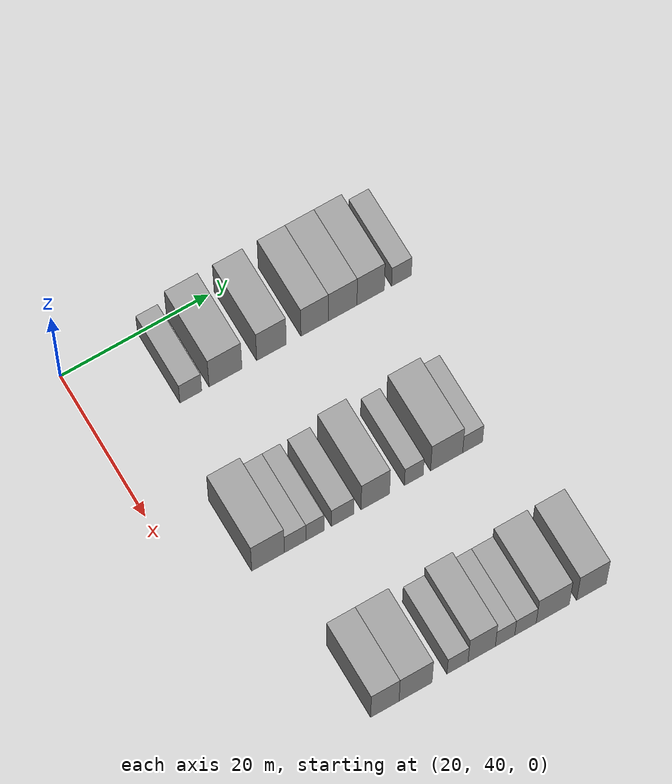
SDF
<sdf version="1.6">
 <world name="default">
  <model name="building_80">
   <static>1</static>
   <pose>25.0000 51.8571 0 0.000000 0.000000 0.000000</pose>
   <link name="link">
    <pose>0 0 3.00 0 0 0</pose>
    <collision name="collision"><geometry><box><size>10.0000 2.9275 6.0000</size></box></geometry></collision>
    <visual name="visual">
     <cast_shadows>0</cast_shadows>
     <geometry><box><size>10.0000 2.9275 6.0000</size></box></geometry>
     <material>
      <script>
       <uri>model://grey_wall/materials/scripts</uri>
       <uri>model://grey_wall/materials/textures</uri>
       <name>vrc/grey_wall</name>
      </script>
     </material>
    </visual>
   </link>
  </model>
  <model name="building_81">
   <static>1</static>
   <pose>25.0000 56.5417 0 0.000000 0.000000 0.000000</pose>
   <link name="link">
    <pose>0 0 4.50 0 0 0</pose>
    <collision name="collision"><geometry><box><size>10.0000 4.4417 9.0000</size></box></geometry></collision>
    <visual name="visual">
     <cast_shadows>0</cast_shadows>
     <geometry><box><size>10.0000 4.4417 9.0000</size></box></geometry>
     <material>
      <script>
       <uri>model://grey_wall/materials/scripts</uri>
       <uri>model://grey_wall/materials/textures</uri>
       <name>vrc/grey_wall</name>
      </script>
     </material>
    </visual>
   </link>
  </model>
  <model name="building_82">
   <static>1</static>
   <pose>25.0000 62.7658 0 0.000000 0.000000 0.000000</pose>
   <link name="link">
    <pose>0 0 4.50 0 0 0</pose>
    <collision name="collision"><geometry><box><size>10.0000 4.0066 9.0000</size></box></geometry></collision>
    <visual name="visual">
     <cast_shadows>0</cast_shadows>
     <geometry><box><size>10.0000 4.0066 9.0000</size></box></geometry>
     <material>
      <script>
       <uri>model://grey_wall/materials/scripts</uri>
       <uri>model://grey_wall/materials/textures</uri>
       <name>vrc/grey_wall</name>
      </script>
     </material>
    </visual>
   </link>
  </model>
  <model name="building_83">
   <static>1</static>
   <pose>25.0000 68.6392 0 0.000000 0.000000 0.000000</pose>
   <link name="link">
    <pose>0 0 4.50 0 0 0</pose>
    <collision name="collision"><geometry><box><size>10.0000 3.7401 9.0000</size></box></geometry></collision>
    <visual name="visual">
     <cast_shadows>0</cast_shadows>
     <geometry><box><size>10.0000 3.7401 9.0000</size></box></geometry>
     <material>
      <script>
       <uri>model://grey_wall/materials/scripts</uri>
       <uri>model://grey_wall/materials/textures</uri>
       <name>vrc/grey_wall</name>
      </script>
     </material>
    </visual>
   </link>
  </model>
  <model name="building_84">
   <static>1</static>
   <pose>25.0000 72.4593 0 0.000000 0.000000 0.000000</pose>
   <link name="link">
    <pose>0 0 4.50 0 0 0</pose>
    <collision name="collision"><geometry><box><size>10.0000 3.9002 9.0000</size></box></geometry></collision>
    <visual name="visual">
     <cast_shadows>0</cast_shadows>
     <geometry><box><size>10.0000 3.9002 9.0000</size></box></geometry>
     <material>
      <script>
       <uri>model://grey_wall/materials/scripts</uri>
       <uri>model://grey_wall/materials/textures</uri>
       <name>vrc/grey_wall</name>
      </script>
     </material>
    </visual>
   </link>
  </model>
  <model name="building_85">
   <static>1</static>
   <pose>25.0000 76.2775 0 0.000000 0.000000 0.000000</pose>
   <link name="link">
    <pose>0 0 4.50 0 0 0</pose>
    <collision name="collision"><geometry><box><size>10.0000 3.7361 9.0000</size></box></geometry></collision>
    <visual name="visual">
     <cast_shadows>0</cast_shadows>
     <geometry><box><size>10.0000 3.7361 9.0000</size></box></geometry>
     <material>
      <script>
       <uri>model://grey_wall/materials/scripts</uri>
       <uri>model://grey_wall/materials/textures</uri>
       <name>vrc/grey_wall</name>
      </script>
     </material>
    </visual>
   </link>
  </model>
  <model name="building_86">
   <static>1</static>
   <pose>25.0000 80.4934 0 0.000000 0.000000 0.000000</pose>
   <link name="link">
    <pose>0 0 3.00 0 0 0</pose>
    <collision name="collision"><geometry><box><size>10.0000 2.6956 6.0000</size></box></geometry></collision>
    <visual name="visual">
     <cast_shadows>0</cast_shadows>
     <geometry><box><size>10.0000 2.6956 6.0000</size></box></geometry>
     <material>
      <script>
       <uri>model://grey_wall/materials/scripts</uri>
       <uri>model://grey_wall/materials/textures</uri>
       <name>vrc/grey_wall</name>
      </script>
     </material>
    </visual>
   </link>
  </model>
  <model name="building_200">
   <static>1</static>
   <pose>47.0000 49.5239 0 0.000000 0.000000 0.000000</pose>
   <link name="link">
    <pose>0 0 4.50 0 0 0</pose>
    <collision name="collision"><geometry><box><size>10.0000 4.3747 9.0000</size></box></geometry></collision>
    <visual name="visual">
     <cast_shadows>0</cast_shadows>
     <geometry><box><size>10.0000 4.3747 9.0000</size></box></geometry>
     <material>
      <script>
       <uri>model://grey_wall/materials/scripts</uri>
       <uri>model://grey_wall/materials/textures</uri>
       <name>vrc/grey_wall</name>
      </script>
     </material>
    </visual>
   </link>
  </model>
  <model name="building_201">
   <static>1</static>
   <pose>47.0000 53.1585 0 0.000000 0.000000 0.000000</pose>
   <link name="link">
    <pose>0 0 3.00 0 0 0</pose>
    <collision name="collision"><geometry><box><size>10.0000 2.8946 6.0000</size></box></geometry></collision>
    <visual name="visual">
     <cast_shadows>0</cast_shadows>
     <geometry><box><size>10.0000 2.8946 6.0000</size></box></geometry>
     <material>
      <script>
       <uri>model://grey_wall/materials/scripts</uri>
       <uri>model://grey_wall/materials/textures</uri>
       <name>vrc/grey_wall</name>
      </script>
     </material>
    </visual>
   </link>
  </model>
  <model name="building_202">
   <static>1</static>
   <pose>47.0000 55.8089 0 0.000000 0.000000 0.000000</pose>
   <link name="link">
    <pose>0 0 3.00 0 0 0</pose>
    <collision name="collision"><geometry><box><size>10.0000 2.4060 6.0000</size></box></geometry></collision>
    <visual name="visual">
     <cast_shadows>0</cast_shadows>
     <geometry><box><size>10.0000 2.4060 6.0000</size></box></geometry>
     <material>
      <script>
       <uri>model://grey_wall/materials/scripts</uri>
       <uri>model://grey_wall/materials/textures</uri>
       <name>vrc/grey_wall</name>
      </script>
     </material>
    </visual>
   </link>
  </model>
  <model name="building_203">
   <static>1</static>
   <pose>47.0000 59.5060 0 0.000000 0.000000 0.000000</pose>
   <link name="link">
    <pose>0 0 3.00 0 0 0</pose>
    <collision name="collision"><geometry><box><size>10.0000 2.9882 6.0000</size></box></geometry></collision>
    <visual name="visual">
     <cast_shadows>0</cast_shadows>
     <geometry><box><size>10.0000 2.9882 6.0000</size></box></geometry>
     <material>
      <script>
       <uri>model://grey_wall/materials/scripts</uri>
       <uri>model://grey_wall/materials/textures</uri>
       <name>vrc/grey_wall</name>
      </script>
     </material>
    </visual>
   </link>
  </model>
  <model name="building_204">
   <static>1</static>
   <pose>47.0000 63.9199 0 0.000000 0.000000 0.000000</pose>
   <link name="link">
    <pose>0 0 4.50 0 0 0</pose>
    <collision name="collision"><geometry><box><size>10.0000 3.8397 9.0000</size></box></geometry></collision>
    <visual name="visual">
     <cast_shadows>0</cast_shadows>
     <geometry><box><size>10.0000 3.8397 9.0000</size></box></geometry>
     <material>
      <script>
       <uri>model://grey_wall/materials/scripts</uri>
       <uri>model://grey_wall/materials/textures</uri>
       <name>vrc/grey_wall</name>
      </script>
     </material>
    </visual>
   </link>
  </model>
  <model name="building_205">
   <static>1</static>
   <pose>47.0000 69.1114 0 0.000000 0.000000 0.000000</pose>
   <link name="link">
    <pose>0 0 3.00 0 0 0</pose>
    <collision name="collision"><geometry><box><size>10.0000 2.5434 6.0000</size></box></geometry></collision>
    <visual name="visual">
     <cast_shadows>0</cast_shadows>
     <geometry><box><size>10.0000 2.5434 6.0000</size></box></geometry>
     <material>
      <script>
       <uri>model://grey_wall/materials/scripts</uri>
       <uri>model://grey_wall/materials/textures</uri>
       <name>vrc/grey_wall</name>
      </script>
     </material>
    </visual>
   </link>
  </model>
  <model name="building_206">
   <static>1</static>
   <pose>47.0000 73.5597 0 0.000000 0.000000 0.000000</pose>
   <link name="link">
    <pose>0 0 4.50 0 0 0</pose>
    <collision name="collision"><geometry><box><size>10.0000 4.3532 9.0000</size></box></geometry></collision>
    <visual name="visual">
     <cast_shadows>0</cast_shadows>
     <geometry><box><size>10.0000 4.3532 9.0000</size></box></geometry>
     <material>
      <script>
       <uri>model://grey_wall/materials/scripts</uri>
       <uri>model://grey_wall/materials/textures</uri>
       <name>vrc/grey_wall</name>
      </script>
     </material>
    </visual>
   </link>
  </model>
  <model name="building_207">
   <static>1</static>
   <pose>47.0000 77.0814 0 0.000000 0.000000 0.000000</pose>
   <link name="link">
    <pose>0 0 3.00 0 0 0</pose>
    <collision name="collision"><geometry><box><size>10.0000 2.6901 6.0000</size></box></geometry></collision>
    <visual name="visual">
     <cast_shadows>0</cast_shadows>
     <geometry><box><size>10.0000 2.6901 6.0000</size></box></geometry>
     <material>
      <script>
       <uri>model://grey_wall/materials/scripts</uri>
       <uri>model://grey_wall/materials/textures</uri>
       <name>vrc/grey_wall</name>
      </script>
     </material>
    </visual>
   </link>
  </model>
  <model name="building_320">
   <static>1</static>
   <pose>69.0000 52.1998 0 0.000000 0.000000 0.000000</pose>
   <link name="link">
    <pose>0 0 4.50 0 0 0</pose>
    <collision name="collision"><geometry><box><size>10.0000 3.7771 9.0000</size></box></geometry></collision>
    <visual name="visual">
     <cast_shadows>0</cast_shadows>
     <geometry><box><size>10.0000 3.7771 9.0000</size></box></geometry>
     <material>
      <script>
       <uri>model://grey_wall/materials/scripts</uri>
       <uri>model://grey_wall/materials/textures</uri>
       <name>vrc/grey_wall</name>
      </script>
     </material>
    </visual>
   </link>
  </model>
  <model name="building_321">
   <static>1</static>
   <pose>69.0000 56.2789 0 0.000000 0.000000 0.000000</pose>
   <link name="link">
    <pose>0 0 4.50 0 0 0</pose>
    <collision name="collision"><geometry><box><size>10.0000 4.3811 9.0000</size></box></geometry></collision>
    <visual name="visual">
     <cast_shadows>0</cast_shadows>
     <geometry><box><size>10.0000 4.3811 9.0000</size></box></geometry>
     <material>
      <script>
       <uri>model://grey_wall/materials/scripts</uri>
       <uri>model://grey_wall/materials/textures</uri>
       <name>vrc/grey_wall</name>
      </script>
     </material>
    </visual>
   </link>
  </model>
  <model name="building_322">
   <static>1</static>
   <pose>69.0000 61.8760 0 0.000000 0.000000 0.000000</pose>
   <link name="link">
    <pose>0 0 3.00 0 0 0</pose>
    <collision name="collision"><geometry><box><size>10.0000 2.8130 6.0000</size></box></geometry></collision>
    <visual name="visual">
     <cast_shadows>0</cast_shadows>
     <geometry><box><size>10.0000 2.8130 6.0000</size></box></geometry>
     <material>
      <script>
       <uri>model://grey_wall/materials/scripts</uri>
       <uri>model://grey_wall/materials/textures</uri>
       <name>vrc/grey_wall</name>
      </script>
     </material>
    </visual>
   </link>
  </model>
  <model name="building_323">
   <static>1</static>
   <pose>69.0000 65.1072 0 0.000000 0.000000 0.000000</pose>
   <link name="link">
    <pose>0 0 4.50 0 0 0</pose>
    <collision name="collision"><geometry><box><size>10.0000 3.6495 9.0000</size></box></geometry></collision>
    <visual name="visual">
     <cast_shadows>0</cast_shadows>
     <geometry><box><size>10.0000 3.6495 9.0000</size></box></geometry>
     <material>
      <script>
       <uri>model://grey_wall/materials/scripts</uri>
       <uri>model://grey_wall/materials/textures</uri>
       <name>vrc/grey_wall</name>
      </script>
     </material>
    </visual>
   </link>
  </model>
  <model name="building_324">
   <static>1</static>
   <pose>69.0000 68.2366 0 0.000000 0.000000 0.000000</pose>
   <link name="link">
    <pose>0 0 3.00 0 0 0</pose>
    <collision name="collision"><geometry><box><size>10.0000 2.6093 6.0000</size></box></geometry></collision>
    <visual name="visual">
     <cast_shadows>0</cast_shadows>
     <geometry><box><size>10.0000 2.6093 6.0000</size></box></geometry>
     <material>
      <script>
       <uri>model://grey_wall/materials/scripts</uri>
       <uri>model://grey_wall/materials/textures</uri>
       <name>vrc/grey_wall</name>
      </script>
     </material>
    </visual>
   </link>
  </model>
  <model name="building_325">
   <static>1</static>
   <pose>69.0000 70.9825 0 0.000000 0.000000 0.000000</pose>
   <link name="link">
    <pose>0 0 3.00 0 0 0</pose>
    <collision name="collision"><geometry><box><size>10.0000 2.8824 6.0000</size></box></geometry></collision>
    <visual name="visual">
     <cast_shadows>0</cast_shadows>
     <geometry><box><size>10.0000 2.8824 6.0000</size></box></geometry>
     <material>
      <script>
       <uri>model://grey_wall/materials/scripts</uri>
       <uri>model://grey_wall/materials/textures</uri>
       <name>vrc/grey_wall</name>
      </script>
     </material>
    </visual>
   </link>
  </model>
  <model name="building_326">
   <static>1</static>
   <pose>69.0000 74.6498 0 0.000000 0.000000 0.000000</pose>
   <link name="link">
    <pose>0 0 4.50 0 0 0</pose>
    <collision name="collision"><geometry><box><size>10.0000 4.4521 9.0000</size></box></geometry></collision>
    <visual name="visual">
     <cast_shadows>0</cast_shadows>
     <geometry><box><size>10.0000 4.4521 9.0000</size></box></geometry>
     <material>
      <script>
       <uri>model://grey_wall/materials/scripts</uri>
       <uri>model://grey_wall/materials/textures</uri>
       <name>vrc/grey_wall</name>
      </script>
     </material>
    </visual>
   </link>
  </model>
  <model name="building_327">
   <static>1</static>
   <pose>69.0000 79.8652 0 0.000000 0.000000 0.000000</pose>
   <link name="link">
    <pose>0 0 4.50 0 0 0</pose>
    <collision name="collision"><geometry><box><size>10.0000 3.9786 9.0000</size></box></geometry></collision>
    <visual name="visual">
     <cast_shadows>0</cast_shadows>
     <geometry><box><size>10.0000 3.9786 9.0000</size></box></geometry>
     <material>
      <script>
       <uri>model://grey_wall/materials/scripts</uri>
       <uri>model://grey_wall/materials/textures</uri>
       <name>vrc/grey_wall</name>
      </script>
     </material>
    </visual>
   </link>
  </model>
 </world>
</sdf>
